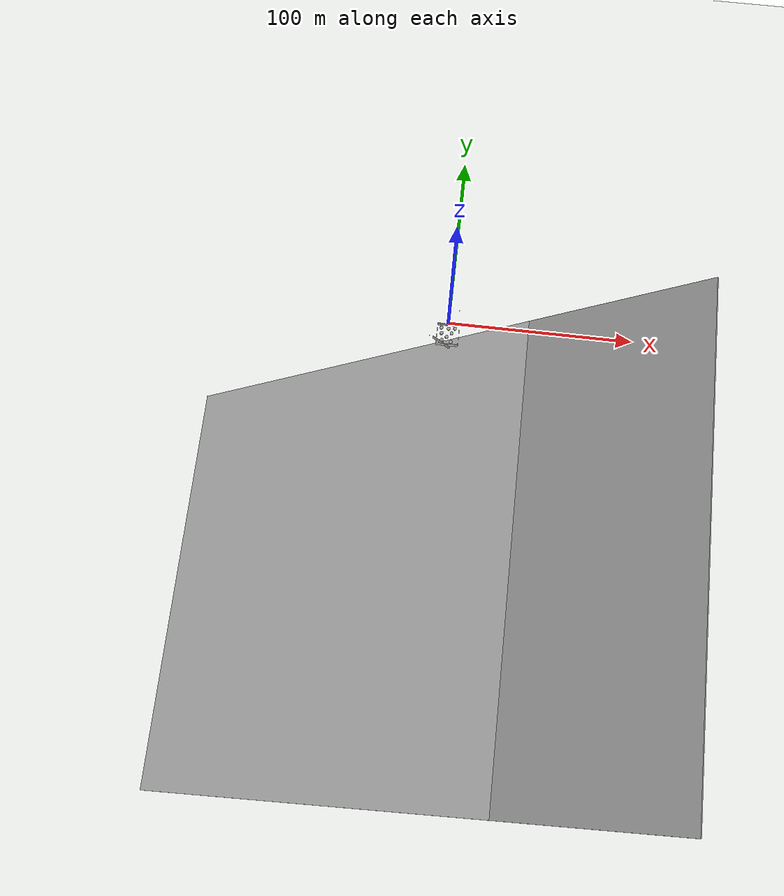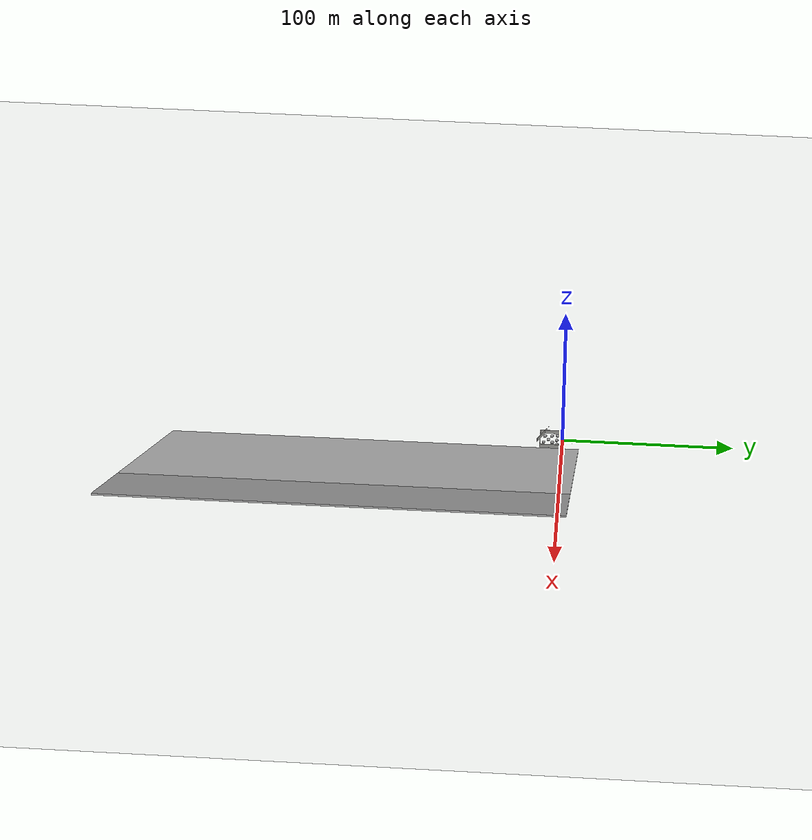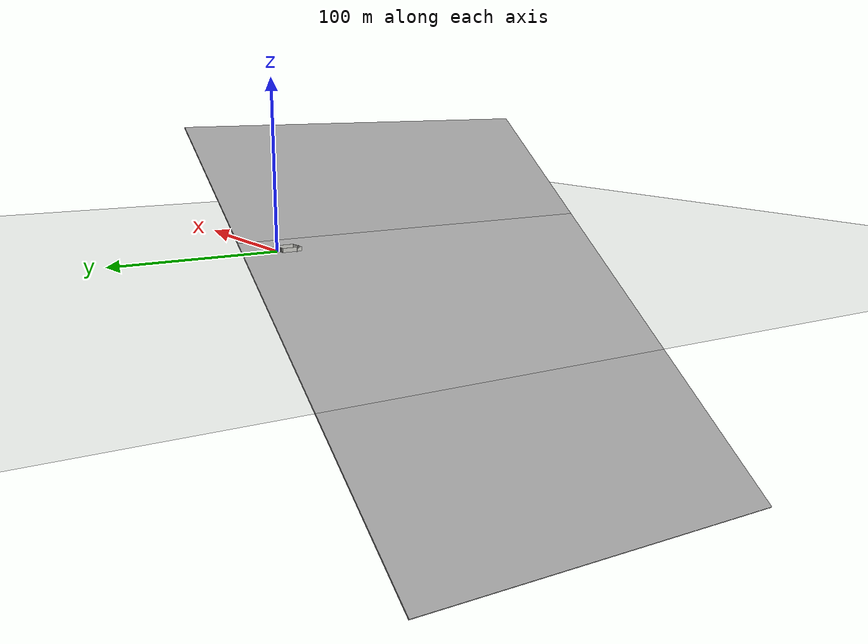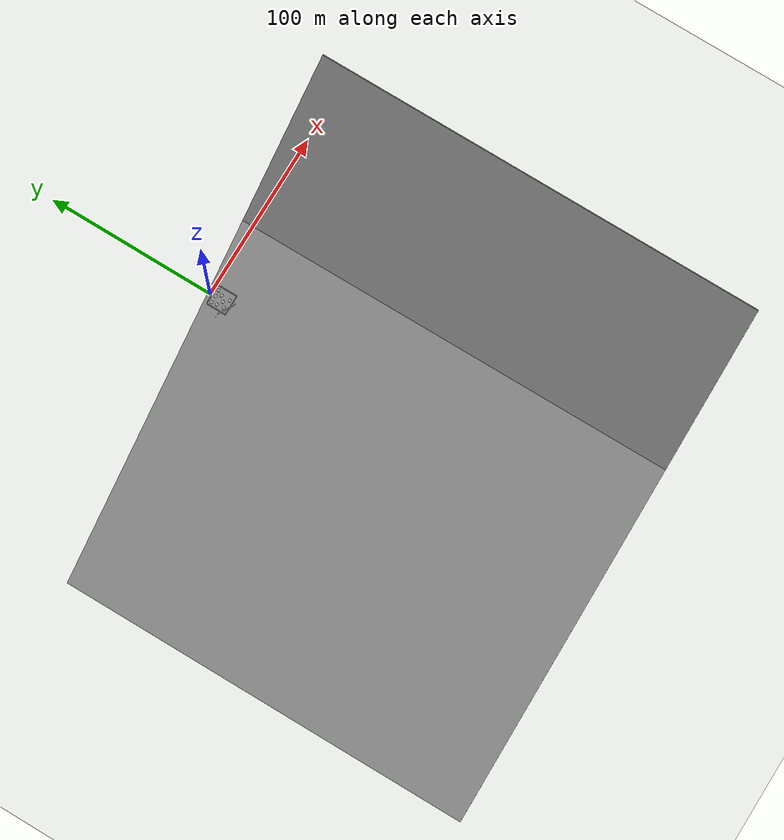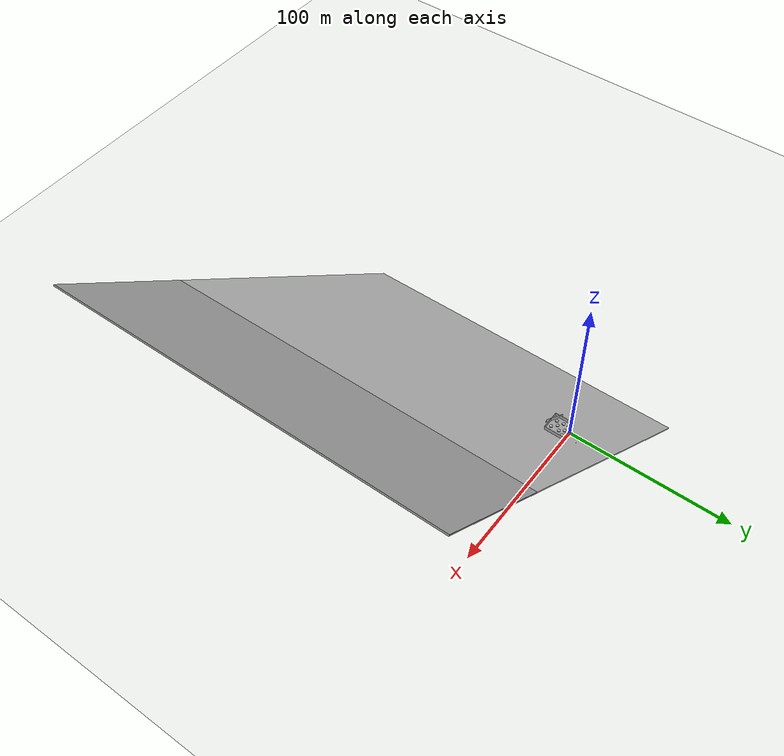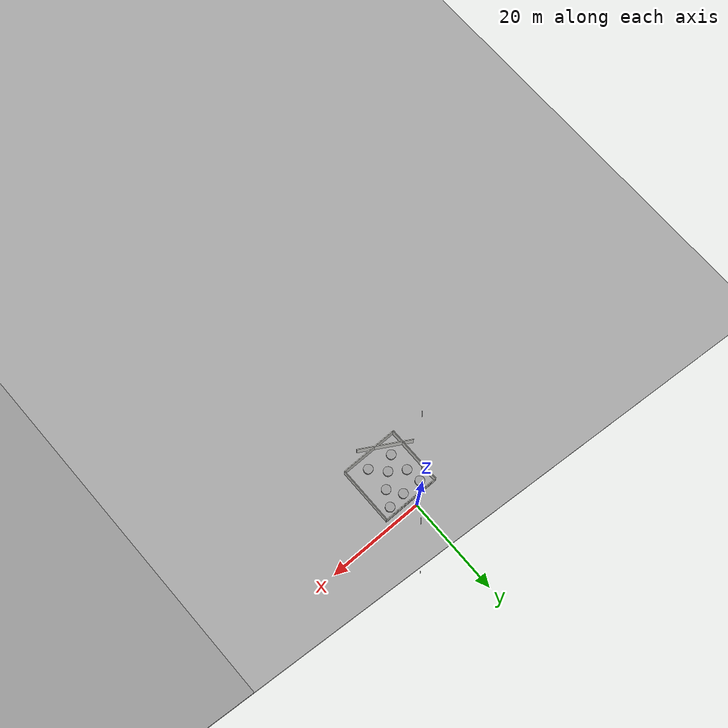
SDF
<sdf version="1.7">
 <world name="default">
  <light name="sun" type="directional">
   <pose>0 0 10 0 -0 0</pose>
   <diffuse>0.8 0.8 0.8 1</diffuse>
   <specular>0.2 0.2 0.2 1</specular>
   <attenuation>
    <range>1000</range>
    <constant>0.9</constant>
    <linear>0.01</linear>
    <quadratic>0.001</quadratic>
   </attenuation>
   <direction>-0.5 0.1 -0.9</direction>
   <spot><inner_angle>0</inner_angle><outer_angle>0</outer_angle><falloff>0</falloff></spot>
  </light>
  <model name="ground_plane">
   <static>1</static>
   <link name="link">
    <collision name="collision">
     <geometry><plane><normal>0 0 1</normal><size>100 100</size></plane></geometry>
     <surface>
      <contact><collide_bitmask>65535</collide_bitmask></contact>
      <friction><ode><mu>100</mu><mu2>50</mu2></ode></friction>
     </surface>
    </collision>
    <visual name="visual">
     <cast_shadows>0</cast_shadows>
     <geometry><plane><normal>0 0 1</normal><size>100 100</size></plane></geometry>
     <material>
      <script><uri>file://media/materials/scripts/gazebo.material</uri><name>Gazebo/Grey</name></script>
     </material>
    </visual>
   </link>
  </model>
  <gravity>0 0 -9.8</gravity>
  <magnetic_field>6e-06 2.3e-05 -4.2e-05</magnetic_field>
  <atmosphere type="adiabatic"/>
  <physics type="ode">
   <max_step_size>0.001</max_step_size>
   <real_time_factor>1</real_time_factor>
   <real_time_update_rate>1000</real_time_update_rate>
  </physics>
  <scene><ambient>0.4 0.4 0.4 1</ambient><background>0.7 0.7 0.7 1</background><shadows>1</shadows></scene>
  <spherical_coordinates>
   <surface_model>EARTH_WGS84</surface_model>
   <latitude_deg>0</latitude_deg>
   <longitude_deg>0</longitude_deg>
   <elevation>0</elevation>
   <heading_deg>0</heading_deg>
  </spherical_coordinates>
  <model name="salleRobotique">
   <pose>-0.550879 -7.41536 0 0 -0 0</pose>
   <link name="Wall_1">
    <pose>0.890161 6.18677 0 0 -0 0</pose>
    <visual name="Wall_1_Visual_0">
     <pose>-5.42274 0 1.25 0 -0 0</pose>
     <geometry><box><size>1.15452 0.15 2.5</size></box></geometry>
     <material>
      <script><uri>file://media/materials/scripts/gazebo.material</uri><name>Gazebo/CeilingTiled</name></script>
      <ambient>1 1 1 1</ambient>
     </material>
     <meta><layer>0</layer></meta>
    </visual>
    <collision name="Wall_1_Collision_0">
     <geometry><box><size>1.15452 0.15 2.5</size></box></geometry>
     <pose>-5.42274 0 1.25 0 -0 0</pose>
    </collision>
    <visual name="Wall_1_Visual_1">
     <pose>0.57726 0 0.25 0 -0 0</pose>
     <geometry><box><size>10.8455 0.15 0.5</size></box></geometry>
     <material>
      <script><uri>file://media/materials/scripts/gazebo.material</uri><name>Gazebo/CeilingTiled</name></script>
      <ambient>1 1 1 1</ambient>
     </material>
     <meta><layer>0</layer></meta>
    </visual>
    <collision name="Wall_1_Collision_1">
     <geometry><box><size>10.8455 0.15 0.5</size></box></geometry>
     <pose>0.57726 0 0.25 0 -0 0</pose>
    </collision>
    <visual name="Wall_1_Visual_2">
     <pose>-3.66807 0 1.5 0 -0 0</pose>
     <geometry><box><size>0.754821 0.15 2</size></box></geometry>
     <material>
      <script><uri>file://media/materials/scripts/gazebo.material</uri><name>Gazebo/CeilingTiled</name></script>
      <ambient>1 1 1 1</ambient>
     </material>
     <meta><layer>0</layer></meta>
    </visual>
    <collision name="Wall_1_Collision_2">
     <geometry><box><size>0.754821 0.15 2</size></box></geometry>
     <pose>-3.66807 0 1.5 0 -0 0</pose>
    </collision>
    <visual name="Wall_1_Visual_3">
     <pose>-2.13371 0 1.5 0 -0 0</pose>
     <geometry><box><size>0.713905 0.15 2</size></box></geometry>
     <material>
      <script><uri>file://media/materials/scripts/gazebo.material</uri><name>Gazebo/CeilingTiled</name></script>
      <ambient>1 1 1 1</ambient>
     </material>
     <meta><layer>0</layer></meta>
    </visual>
    <collision name="Wall_1_Collision_3">
     <geometry><box><size>0.713905 0.15 2</size></box></geometry>
     <pose>-2.13371 0 1.5 0 -0 0</pose>
    </collision>
    <visual name="Wall_1_Visual_4">
     <pose>-0.517511 0 1.5 0 -0 0</pose>
     <geometry><box><size>0.918486 0.15 2</size></box></geometry>
     <material>
      <script><uri>file://media/materials/scripts/gazebo.material</uri><name>Gazebo/CeilingTiled</name></script>
      <ambient>1 1 1 1</ambient>
     </material>
     <meta><layer>0</layer></meta>
    </visual>
    <collision name="Wall_1_Collision_4">
     <geometry><box><size>0.918486 0.15 2</size></box></geometry>
     <pose>-0.517511 0 1.5 0 -0 0</pose>
    </collision>
    <visual name="Wall_1_Visual_5">
     <pose>1.16006 0 1.5 0 -0 0</pose>
     <geometry><box><size>0.836654 0.15 2</size></box></geometry>
     <material>
      <script><uri>file://media/materials/scripts/gazebo.material</uri><name>Gazebo/CeilingTiled</name></script>
      <ambient>1 1 1 1</ambient>
     </material>
     <meta><layer>0</layer></meta>
    </visual>
    <collision name="Wall_1_Collision_5">
     <geometry><box><size>0.836654 0.15 2</size></box></geometry>
     <pose>1.16006 0 1.5 0 -0 0</pose>
    </collision>
    <visual name="Wall_1_Visual_6">
     <pose>2.81717 0 1.5 0 -0 0</pose>
     <geometry><box><size>0.87757 0.15 2</size></box></geometry>
     <material>
      <script><uri>file://media/materials/scripts/gazebo.material</uri><name>Gazebo/CeilingTiled</name></script>
      <ambient>1 1 1 1</ambient>
     </material>
     <meta><layer>0</layer></meta>
    </visual>
    <collision name="Wall_1_Collision_6">
     <geometry><box><size>0.87757 0.15 2</size></box></geometry>
     <pose>2.81717 0 1.5 0 -0 0</pose>
    </collision>
    <visual name="Wall_1_Visual_7">
     <pose>5.02798 0 1.5 0 -0 0</pose>
     <geometry><box><size>1.94404 0.15 2</size></box></geometry>
     <material>
      <script><uri>file://media/materials/scripts/gazebo.material</uri><name>Gazebo/CeilingTiled</name></script>
      <ambient>1 1 1 1</ambient>
     </material>
     <meta><layer>0</layer></meta>
    </visual>
    <collision name="Wall_1_Collision_7">
     <geometry><box><size>1.94404 0.15 2</size></box></geometry>
     <pose>5.02798 0 1.5 0 -0 0</pose>
    </collision>
    <visual name="Wall_1_Visual_8">
     <pose>-4.44548 0 1.9 0 -0 0</pose>
     <geometry><box><size>0.8 0.15 1.2</size></box></geometry>
     <material>
      <script><uri>file://media/materials/scripts/gazebo.material</uri><name>Gazebo/CeilingTiled</name></script>
      <ambient>1 1 1 1</ambient>
     </material>
     <meta><layer>0</layer></meta>
    </visual>
    <collision name="Wall_1_Collision_8">
     <geometry><box><size>0.8 0.15 1.2</size></box></geometry>
     <pose>-4.44548 0 1.9 0 -0 0</pose>
    </collision>
    <visual name="Wall_1_Visual_9">
     <pose>-2.89066 0 1.9 0 -0 0</pose>
     <geometry><box><size>0.8 0.15 1.2</size></box></geometry>
     <material>
      <script><uri>file://media/materials/scripts/gazebo.material</uri><name>Gazebo/CeilingTiled</name></script>
      <ambient>1 1 1 1</ambient>
     </material>
     <meta><layer>0</layer></meta>
    </visual>
    <collision name="Wall_1_Collision_9">
     <geometry><box><size>0.8 0.15 1.2</size></box></geometry>
     <pose>-2.89066 0 1.9 0 -0 0</pose>
    </collision>
    <visual name="Wall_1_Visual_10">
     <pose>-1.37675 0 1.9 0 -0 0</pose>
     <geometry><box><size>0.8 0.15 1.2</size></box></geometry>
     <material>
      <script><uri>file://media/materials/scripts/gazebo.material</uri><name>Gazebo/CeilingTiled</name></script>
      <ambient>1 1 1 1</ambient>
     </material>
     <meta><layer>0</layer></meta>
    </visual>
    <collision name="Wall_1_Collision_10">
     <geometry><box><size>0.8 0.15 1.2</size></box></geometry>
     <pose>-1.37675 0 1.9 0 -0 0</pose>
    </collision>
    <visual name="Wall_1_Visual_11">
     <pose>0.341732 0 1.9 0 -0 0</pose>
     <geometry><box><size>0.8 0.15 1.2</size></box></geometry>
     <material>
      <script><uri>file://media/materials/scripts/gazebo.material</uri><name>Gazebo/CeilingTiled</name></script>
      <ambient>1 1 1 1</ambient>
     </material>
     <meta><layer>0</layer></meta>
    </visual>
    <collision name="Wall_1_Collision_11">
     <geometry><box><size>0.8 0.15 1.2</size></box></geometry>
     <pose>0.341732 0 1.9 0 -0 0</pose>
    </collision>
    <visual name="Wall_1_Visual_12">
     <pose>1.97839 0 1.9 0 -0 0</pose>
     <geometry><box><size>0.8 0.15 1.2</size></box></geometry>
     <material>
      <script><uri>file://media/materials/scripts/gazebo.material</uri><name>Gazebo/CeilingTiled</name></script>
      <ambient>1 1 1 1</ambient>
     </material>
     <meta><layer>0</layer></meta>
    </visual>
    <collision name="Wall_1_Collision_12">
     <geometry><box><size>0.8 0.15 1.2</size></box></geometry>
     <pose>1.97839 0 1.9 0 -0 0</pose>
    </collision>
    <visual name="Wall_1_Visual_13">
     <pose>3.65596 0 1.9 0 -0 0</pose>
     <geometry><box><size>0.8 0.15 1.2</size></box></geometry>
     <material>
      <script><uri>file://media/materials/scripts/gazebo.material</uri><name>Gazebo/CeilingTiled</name></script>
      <ambient>1 1 1 1</ambient>
     </material>
     <meta><layer>0</layer></meta>
    </visual>
    <collision name="Wall_1_Collision_13">
     <geometry><box><size>0.8 0.15 1.2</size></box></geometry>
     <pose>3.65596 0 1.9 0 -0 0</pose>
    </collision>
   </link>
   <link name="Wall_3">
    <collision name="Wall_3_Collision">
     <geometry><box><size>12 0.15 2.5</size></box></geometry>
     <pose>0 0 1.25 0 -0 0</pose>
    </collision>
    <visual name="Wall_3_Visual">
     <pose>0 0 1.25 0 -0 0</pose>
     <geometry><box><size>12 0.15 2.5</size></box></geometry>
     <material>
      <script><uri>file://media/materials/scripts/gazebo.material</uri><name>Gazebo/CeilingTiled</name></script>
      <ambient>1 1 1 1</ambient>
     </material>
     <meta><layer>0</layer></meta>
    </visual>
    <pose>-5.03484 0.26177 0 0 -0 -1.5708</pose>
   </link>
   <link name="Wall_4">
    <collision name="Wall_4_Collision">
     <geometry><box><size>12 0.15 2.5</size></box></geometry>
     <pose>0 0 1.25 0 -0 0</pose>
    </collision>
    <visual name="Wall_4_Visual">
     <pose>0 0 1.25 0 -0 0</pose>
     <geometry><box><size>12 0.15 2.5</size></box></geometry>
     <material>
      <script><uri>file://media/materials/scripts/gazebo.material</uri><name>Gazebo/CeilingTiled</name></script>
      <ambient>1 1 1 1</ambient>
     </material>
     <meta><layer>0</layer></meta>
    </visual>
    <pose>0.890161 -5.66323 0 0 -0 0</pose>
   </link>
   <link name="Wall_5">
    <collision name="Wall_5_Collision">
     <geometry><box><size>0.15 0.15 2.5</size></box></geometry>
     <pose>0 0 1.25 0 -0 0</pose>
    </collision>
    <visual name="Wall_5_Visual">
     <pose>0 0 1.25 0 -0 0</pose>
     <geometry><box><size>0.15 0.15 2.5</size></box></geometry>
     <material>
      <script><uri>file://media/materials/scripts/gazebo.material</uri><name>Gazebo/Grey</name></script>
      <ambient>1 1 1 1</ambient>
     </material>
     <meta><layer>0</layer></meta>
    </visual>
    <pose>6.81516 -5.66323 0 0 -0 0</pose>
   </link>
   <link name="Wall_6">
    <collision name="Wall_6_Collision">
     <geometry><box><size>12 0.15 2.5</size></box></geometry>
     <pose>0 0 1.25 0 -0 0</pose>
    </collision>
    <visual name="Wall_6_Visual">
     <pose>0 0 1.25 0 -0 0</pose>
     <geometry><box><size>12 0.15 2.5</size></box></geometry>
     <material>
      <script><uri>file://media/materials/scripts/gazebo.material</uri><name>Gazebo/CeilingTiled</name></script>
      <ambient>1 1 1 1</ambient>
     </material>
     <meta><layer>0</layer></meta>
    </visual>
    <pose>6.81516 0.26177 0 0 -0 1.5708</pose>
   </link>
   <link name="Wall_8">
    <collision name="Wall_8_Collision">
     <geometry><box><size>10.75 0.15 2.5</size></box></geometry>
     <pose>0 0 1.25 0 -0 0</pose>
    </collision>
    <visual name="Wall_8_Visual">
     <pose>0 0 1.25 0 -0 0</pose>
     <geometry><box><size>10.75 0.15 2.5</size></box></geometry>
     <material>
      <script><uri>file://media/materials/scripts/gazebo.material</uri><name>Gazebo/CeilingTiled</name></script>
      <ambient>1 1 1 1</ambient>
     </material>
     <meta><layer>0</layer></meta>
    </visual>
    <pose>-2.19778 -4.66291 0 0 -0 -0.523599</pose>
   </link>
   <static>1</static>
  </model>
  <model name="unit_cylinder">
   <pose>-3.83824 -3.19123 2.50807 1.56897 -0.100758 -0.733723</pose>
   <link name="link">
    <inertial>
     <mass>1</mass>
     <inertia><ixx>0.145833</ixx><ixy>0</ixy><ixz>0</ixz><iyy>0.145833</iyy><iyz>0</iyz><izz>0.125</izz></inertia>
    </inertial>
    <collision name="collision">
     <geometry><cylinder><radius>0.00657077</radius><length>35.8458</length></cylinder></geometry>
    </collision>
    <visual name="visual">
     <geometry><cylinder><radius>0.00657077</radius><length>35.8458</length></cylinder></geometry>
     <material>
      <script><name>Gazebo/Grey</name><uri>file://media/materials/scripts/gazebo.material</uri></script>
     </material>
    </visual>
   </link>
  </model>
  <model name="unit_cylinder_clone">
   <pose>0.481428 -3.16229 0.299853 0 0 -0.26724</pose>
   <link name="link">
    <inertial>
     <mass>1</mass>
     <inertia><ixx>0.145833</ixx><ixy>0</ixy><ixz>0</ixz><iyy>0.145833</iyy><iyz>0</iyz><izz>0.125</izz></inertia>
    </inertial>
    <collision name="collision">
     <geometry><cylinder><radius>0.928392</radius><length>0.599706</length></cylinder></geometry>
    </collision>
    <visual name="visual">
     <geometry><cylinder><radius>0.928392</radius><length>0.599706</length></cylinder></geometry>
     <material>
      <script><name>Gazebo/Grey</name><uri>file://media/materials/scripts/gazebo.material</uri></script>
     </material>
    </visual>
   </link>
  </model>
  <model name="unit_cylinder_clone_0">
   <pose>4.00915 -2.83128 0.299848 -5e-06 -5e-06 0.077917</pose>
   <link name="link">
    <inertial>
     <mass>1</mass>
     <inertia><ixx>0.145833</ixx><ixy>0</ixy><ixz>0</ixz><iyy>0.145833</iyy><iyz>0</iyz><izz>0.125</izz></inertia>
    </inertial>
    <collision name="collision">
     <geometry><cylinder><radius>0.928392</radius><length>0.599706</length></cylinder></geometry>
    </collision>
    <visual name="visual">
     <geometry><cylinder><radius>0.928392</radius><length>0.599706</length></cylinder></geometry>
     <material>
      <script><name>Gazebo/Grey</name><uri>file://media/materials/scripts/gazebo.material</uri></script>
     </material>
    </visual>
   </link>
  </model>
  <model name="unit_cylinder_clone_1">
   <pose>-3.43413 -3.01806 0.299848 5e-06 5e-06 -1.59582</pose>
   <link name="link">
    <inertial>
     <mass>1</mass>
     <inertia><ixx>0.145833</ixx><ixy>0</ixy><ixz>0</ixz><iyy>0.145833</iyy><iyz>0</iyz><izz>0.125</izz></inertia>
    </inertial>
    <collision name="collision">
     <geometry><cylinder><radius>0.928392</radius><length>0.599706</length></cylinder></geometry>
    </collision>
    <visual name="visual">
     <geometry><cylinder><radius>0.928392</radius><length>0.599706</length></cylinder></geometry>
     <material>
      <script><name>Gazebo/Grey</name><uri>file://media/materials/scripts/gazebo.material</uri></script>
     </material>
    </visual>
   </link>
  </model>
  <model name="unit_cylinder_clone_2">
   <pose>2.40204 -5.7995 0.299848 5e-06 -6e-06 0.106304</pose>
   <link name="link">
    <inertial>
     <mass>1</mass>
     <inertia><ixx>0.145833</ixx><ixy>0</ixy><ixz>0</ixz><iyy>0.145833</iyy><iyz>0</iyz><izz>0.125</izz></inertia>
    </inertial>
    <collision name="collision">
     <geometry><cylinder><radius>0.928392</radius><length>0.599706</length></cylinder></geometry>
    </collision>
    <visual name="visual">
     <geometry><cylinder><radius>0.928392</radius><length>0.599706</length></cylinder></geometry>
     <material>
      <script><name>Gazebo/Grey</name><uri>file://media/materials/scripts/gazebo.material</uri></script>
     </material>
    </visual>
   </link>
  </model>
  <model name="unit_cylinder_clone_3">
   <pose>-2.67007 -10.2032 0.299853 -3.14159 -0 1.23403</pose>
   <link name="link">
    <inertial>
     <mass>1</mass>
     <inertia><ixx>0.145833</ixx><ixy>0</ixy><ixz>0</ixz><iyy>0.145833</iyy><iyz>0</iyz><izz>0.125</izz></inertia>
    </inertial>
    <collision name="collision">
     <geometry><cylinder><radius>0.928392</radius><length>0.599706</length></cylinder></geometry>
    </collision>
    <visual name="visual">
     <geometry><cylinder><radius>0.928392</radius><length>0.599706</length></cylinder></geometry>
     <material>
      <script><name>Gazebo/Grey</name><uri>file://media/materials/scripts/gazebo.material</uri></script>
     </material>
    </visual>
   </link>
  </model>
  <model name="unit_box">
   <pose>-15.1615 -125.387 -48.2642 0.002464 -0.670796 1e-06</pose>
   <link name="link">
    <inertial>
     <mass>1</mass>
     <inertia>
      <ixx>0.166667</ixx>
      <ixy>0</ixy>
      <ixz>0</ixz>
      <iyy>0.166667</iyy>
      <iyz>0</iyz>
      <izz>0.166667</izz>
     </inertia>
    </inertial>
    <collision name="collision"><geometry><box><size>367.687 264.139 1</size></box></geometry></collision>
    <visual name="visual">
     <geometry><box><size>367.687 264.139 1</size></box></geometry>
     <material>
      <script><name>Gazebo/Grey</name><uri>file://media/materials/scripts/gazebo.material</uri></script>
     </material>
    </visual>
   </link>
  </model>
  <model name="unit_cylinder_clone_0_clone">
   <pose>-0.110641 -8.16708 0.299848 -5e-06 -5e-06 0.077917</pose>
   <link name="link">
    <inertial>
     <mass>1</mass>
     <inertia><ixx>0.145833</ixx><ixy>0</ixy><ixz>0</ixz><iyy>0.145833</iyy><iyz>0</iyz><izz>0.125</izz></inertia>
    </inertial>
    <collision name="collision">
     <geometry><cylinder><radius>0.928392</radius><length>0.599706</length></cylinder></geometry>
    </collision>
    <visual name="visual">
     <geometry><cylinder><radius>0.928392</radius><length>0.599706</length></cylinder></geometry>
     <material>
      <script><name>Gazebo/Grey</name><uri>file://media/materials/scripts/gazebo.material</uri></script>
     </material>
    </visual>
   </link>
  </model>
  <model name="unit_cylinder_clone_3_clone">
   <pose>-3.03186 -6.13946 0.299853 -3.14159 -0 1.23359</pose>
   <link name="link">
    <inertial>
     <mass>1</mass>
     <inertia><ixx>0.145833</ixx><ixy>0</ixy><ixz>0</ixz><iyy>0.145833</iyy><iyz>0</iyz><izz>0.125</izz></inertia>
    </inertial>
    <collision name="collision">
     <geometry><cylinder><radius>0.928392</radius><length>0.599706</length></cylinder></geometry>
    </collision>
    <visual name="visual">
     <geometry><cylinder><radius>0.928392</radius><length>0.599706</length></cylinder></geometry>
     <material>
      <script><name>Gazebo/Grey</name><uri>file://media/materials/scripts/gazebo.material</uri></script>
     </material>
    </visual>
   </link>
  </model>
  <model name="unit_cylinder_clone_3_clone_0">
   <pose>2.38677 -10.8895 0.299848 -3.14159 7e-06 1.23403</pose>
   <link name="link">
    <inertial>
     <mass>1</mass>
     <inertia><ixx>0.145833</ixx><ixy>0</ixy><ixz>0</ixz><iyy>0.145833</iyy><iyz>0</iyz><izz>0.125</izz></inertia>
    </inertial>
    <collision name="collision">
     <geometry><cylinder><radius>0.928392</radius><length>0.599706</length></cylinder></geometry>
    </collision>
    <visual name="visual">
     <geometry><cylinder><radius>0.928392</radius><length>0.599706</length></cylinder></geometry>
     <material>
      <script><name>Gazebo/Grey</name><uri>file://media/materials/scripts/gazebo.material</uri></script>
     </material>
    </visual>
   </link>
  </model>
 </world>
</sdf>
